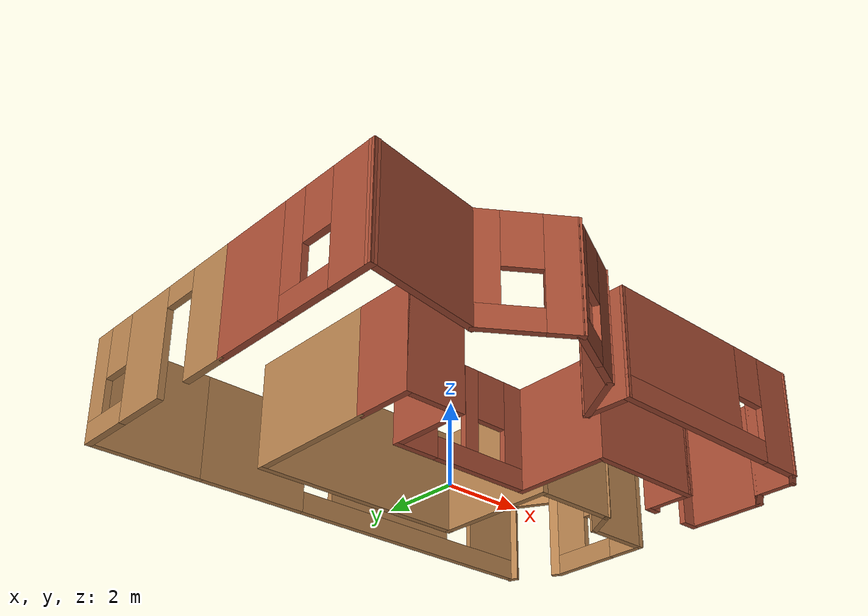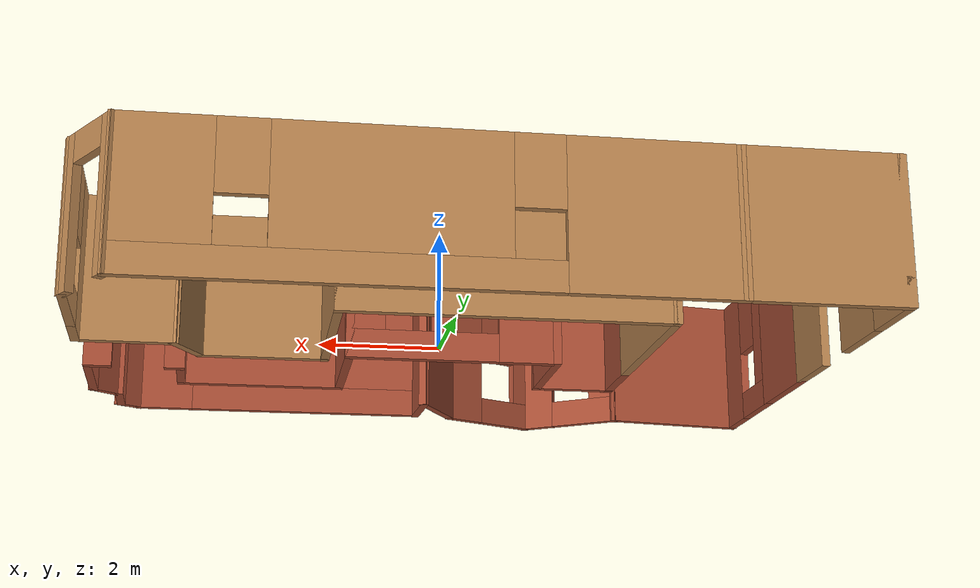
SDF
<?xml version='1.0'?>
<sdf version='1.7'>
  <model name='Casita'>
    <pose>-0.412765 -1.41431 0 0 -0 0</pose>
    <link name='Wall_0'>
      <collision name='Wall_0_Collision'>
        <geometry>
          <box>
            <size>2 0.15 2.5</size>
          </box>
        </geometry>
        <pose>0 0 1.25 0 -0 0</pose>
      </collision>
      <visual name='Wall_0_Visual'>
        <pose>0 0 1.25 0 -0 0</pose>
        <geometry>
          <box>
            <size>2 0.15 2.5</size>
          </box>
        </geometry>
        <material>
          <script>
            <uri>file://media/materials/scripts/gazebo.material</uri>
            <name>Gazebo/Bricks</name>
          </script>
          <ambient>1 1 1 1</ambient>
        </material>
        <meta>
          <layer>0</layer>
        </meta>
      </visual>
      <pose>-1.75724 -0.300687 0 0 -0 1.5708</pose>
    </link>
    <link name='Wall_1'>
      <pose>0.042765 0.624313 0 0 -0 0</pose>
      <visual name='Wall_1_Visual_0'>
        <pose>-1.3275 0 1.25 0 -0 0</pose>
        <geometry>
          <box>
            <size>1.095 0.15 2.5</size>
          </box>
        </geometry>
        <material>
          <script>
            <uri>file://media/materials/scripts/gazebo.material</uri>
            <name>Gazebo/Bricks</name>
          </script>
          <ambient>1 1 1 1</ambient>
        </material>
        <meta>
          <layer>0</layer>
        </meta>
      </visual>
      <collision name='Wall_1_Collision_0'>
        <geometry>
          <box>
            <size>1.095 0.15 2.5</size>
          </box>
        </geometry>
        <pose>-1.3275 0 1.25 0 -0 0</pose>
      </collision>
      <visual name='Wall_1_Visual_1'>
        <pose>0.5475 0 0.25 0 -0 0</pose>
        <geometry>
          <box>
            <size>2.655 0.15 0.5</size>
          </box>
        </geometry>
        <material>
          <script>
            <uri>file://media/materials/scripts/gazebo.material</uri>
            <name>Gazebo/Bricks</name>
          </script>
          <ambient>1 1 1 1</ambient>
        </material>
        <meta>
          <layer>0</layer>
        </meta>
      </visual>
      <collision name='Wall_1_Collision_1'>
        <geometry>
          <box>
            <size>2.655 0.15 0.5</size>
          </box>
        </geometry>
        <pose>0.5475 0 0.25 0 -0 0</pose>
      </collision>
      <visual name='Wall_1_Visual_2'>
        <pose>0.21 0 1.5 0 -0 0</pose>
        <geometry>
          <box>
            <size>0.38 0.15 2</size>
          </box>
        </geometry>
        <material>
          <script>
            <uri>file://media/materials/scripts/gazebo.material</uri>
            <name>Gazebo/Bricks</name>
          </script>
          <ambient>1 1 1 1</ambient>
        </material>
        <meta>
          <layer>0</layer>
        </meta>
      </visual>
      <collision name='Wall_1_Collision_2'>
        <geometry>
          <box>
            <size>0.38 0.15 2</size>
          </box>
        </geometry>
        <pose>0.21 0 1.5 0 -0 0</pose>
      </collision>
      <visual name='Wall_1_Visual_3'>
        <pose>1.5375 0 1.5 0 -0 0</pose>
        <geometry>
          <box>
            <size>0.675 0.15 2</size>
          </box>
        </geometry>
        <material>
          <script>
            <uri>file://media/materials/scripts/gazebo.material</uri>
            <name>Gazebo/Bricks</name>
          </script>
          <ambient>1 1 1 1</ambient>
        </material>
        <meta>
          <layer>0</layer>
        </meta>
      </visual>
      <collision name='Wall_1_Collision_3'>
        <geometry>
          <box>
            <size>0.675 0.15 2</size>
          </box>
        </geometry>
        <pose>1.5375 0 1.5 0 -0 0</pose>
      </collision>
      <visual name='Wall_1_Visual_4'>
        <pose>-0.38 0 1.9 0 -0 0</pose>
        <geometry>
          <box>
            <size>0.8 0.15 1.2</size>
          </box>
        </geometry>
        <material>
          <script>
            <uri>file://media/materials/scripts/gazebo.material</uri>
            <name>Gazebo/Bricks</name>
          </script>
          <ambient>1 1 1 1</ambient>
        </material>
        <meta>
          <layer>0</layer>
        </meta>
      </visual>
      <collision name='Wall_1_Collision_4'>
        <geometry>
          <box>
            <size>0.8 0.15 1.2</size>
          </box>
        </geometry>
        <pose>-0.38 0 1.9 0 -0 0</pose>
      </collision>
      <visual name='Wall_1_Visual_5'>
        <pose>0.8 0 1.9 0 -0 0</pose>
        <geometry>
          <box>
            <size>0.8 0.15 1.2</size>
          </box>
        </geometry>
        <material>
          <script>
            <uri>file://media/materials/scripts/gazebo.material</uri>
            <name>Gazebo/Bricks</name>
          </script>
          <ambient>1 1 1 1</ambient>
        </material>
        <meta>
          <layer>0</layer>
        </meta>
      </visual>
      <collision name='Wall_1_Collision_5'>
        <geometry>
          <box>
            <size>0.8 0.15 1.2</size>
          </box>
        </geometry>
        <pose>0.8 0 1.9 0 -0 0</pose>
      </collision>
    </link>
    <link name='Wall_11'>
      <collision name='Wall_11_Collision'>
        <geometry>
          <box>
            <size>0.591022 0.15 2.5</size>
          </box>
        </geometry>
        <pose>0 0 1.25 0 -0 0</pose>
      </collision>
      <visual name='Wall_11_Visual'>
        <pose>0 0 1.25 0 -0 0</pose>
        <geometry>
          <box>
            <size>0.591022 0.15 2.5</size>
          </box>
        </geometry>
        <material>
          <script>
            <uri>file://media/materials/scripts/gazebo.material</uri>
            <name>Gazebo/Bricks</name>
          </script>
          <ambient>1 1 1 1</ambient>
        </material>
        <meta>
          <layer>0</layer>
        </meta>
      </visual>
      <pose>5.69995 -3.77787 0 0 -0 -2.56617</pose>
    </link>
    <link name='Wall_12'>
      <pose>2.83995 -3.89787 0 0 -0 3.14159</pose>
      <visual name='Wall_12_Visual_0'>
        <pose>-2.21641 0 1.25 0 -0 0</pose>
        <geometry>
          <box>
            <size>1.06718 0.15 2.5</size>
          </box>
        </geometry>
        <material>
          <script>
            <uri>file://media/materials/scripts/gazebo.material</uri>
            <name>Gazebo/Bricks</name>
          </script>
          <ambient>1 1 1 1</ambient>
        </material>
        <meta>
          <layer>0</layer>
        </meta>
      </visual>
      <collision name='Wall_12_Collision_0'>
        <geometry>
          <box>
            <size>1.06718 0.15 2.5</size>
          </box>
        </geometry>
        <pose>-2.21641 0 1.25 0 -0 0</pose>
      </collision>
      <visual name='Wall_12_Visual_1'>
        <pose>0.533591 0 0.25 0 -0 0</pose>
        <geometry>
          <box>
            <size>4.43282 0.15 0.5</size>
          </box>
        </geometry>
        <material>
          <script>
            <uri>file://media/materials/scripts/gazebo.material</uri>
            <name>Gazebo/Bricks</name>
          </script>
          <ambient>1 1 1 1</ambient>
        </material>
        <meta>
          <layer>0</layer>
        </meta>
      </visual>
      <collision name='Wall_12_Collision_1'>
        <geometry>
          <box>
            <size>4.43282 0.15 0.5</size>
          </box>
        </geometry>
        <pose>0.533591 0 0.25 0 -0 0</pose>
      </collision>
      <visual name='Wall_12_Visual_2'>
        <pose>0.933591 0 1.5 0 -0 0</pose>
        <geometry>
          <box>
            <size>3.63282 0.15 2</size>
          </box>
        </geometry>
        <material>
          <script>
            <uri>file://media/materials/scripts/gazebo.material</uri>
            <name>Gazebo/Bricks</name>
          </script>
          <ambient>1 1 1 1</ambient>
        </material>
        <meta>
          <layer>0</layer>
        </meta>
      </visual>
      <collision name='Wall_12_Collision_2'>
        <geometry>
          <box>
            <size>3.63282 0.15 2</size>
          </box>
        </geometry>
        <pose>0.933591 0 1.5 0 -0 0</pose>
      </collision>
      <visual name='Wall_12_Visual_3'>
        <pose>-1.28282 0 1.9 0 -0 0</pose>
        <geometry>
          <box>
            <size>0.8 0.15 1.2</size>
          </box>
        </geometry>
        <material>
          <script>
            <uri>file://media/materials/scripts/gazebo.material</uri>
            <name>Gazebo/Bricks</name>
          </script>
          <ambient>1 1 1 1</ambient>
        </material>
        <meta>
          <layer>0</layer>
        </meta>
      </visual>
      <collision name='Wall_12_Collision_3'>
        <geometry>
          <box>
            <size>0.8 0.15 1.2</size>
          </box>
        </geometry>
        <pose>-1.28282 0 1.9 0 -0 0</pose>
      </collision>
    </link>
    <link name='Wall_13'>
      <collision name='Wall_13_Collision'>
        <geometry>
          <box>
            <size>1.15125 0.15 2.5</size>
          </box>
        </geometry>
        <pose>0 0 1.25 0 -0 0</pose>
      </collision>
      <visual name='Wall_13_Visual'>
        <pose>0 0 1.25 0 -0 0</pose>
        <geometry>
          <box>
            <size>1.15125 0.15 2.5</size>
          </box>
        </geometry>
        <material>
          <script>
            <uri>file://media/materials/scripts/gazebo.material</uri>
            <name>Gazebo/Bricks</name>
          </script>
          <ambient>1 1 1 1</ambient>
        </material>
        <meta>
          <layer>0</layer>
        </meta>
      </visual>
      <pose>0.139947 -3.39787 0 0 -0 1.62075</pose>
    </link>
    <link name='Wall_14'>
      <collision name='Wall_14_Collision'>
        <geometry>
          <box>
            <size>1.5 0.15 2.5</size>
          </box>
        </geometry>
        <pose>0 0 1.25 0 -0 0</pose>
      </collision>
      <visual name='Wall_14_Visual'>
        <pose>0 0 1.25 0 -0 0</pose>
        <geometry>
          <box>
            <size>1.5 0.15 2.5</size>
          </box>
        </geometry>
        <material>
          <script>
            <uri>file://media/materials/scripts/gazebo.material</uri>
            <name>Gazebo/Bricks</name>
          </script>
          <ambient>1 1 1 1</ambient>
        </material>
        <meta>
          <layer>0</layer>
        </meta>
      </visual>
      <pose>-0.212553 -3.45244 0 0 -0 -2.0944</pose>
    </link>
    <link name='Wall_15'>
      <pose>-1.37755 -4.44744 0 0 -0 -2.68116</pose>
      <visual name='Wall_15_Visual_0'>
        <pose>-0.599184 0 1.25 0 -0 0</pose>
        <geometry>
          <box>
            <size>0.799021 0.15 2.5</size>
          </box>
        </geometry>
        <material>
          <script>
            <uri>file://media/materials/scripts/gazebo.material</uri>
            <name>Gazebo/Bricks</name>
          </script>
          <ambient>1 1 1 1</ambient>
        </material>
        <meta>
          <layer>0</layer>
        </meta>
      </visual>
      <collision name='Wall_15_Collision_0'>
        <geometry>
          <box>
            <size>0.799021 0.15 2.5</size>
          </box>
        </geometry>
        <pose>-0.599184 0 1.25 0 -0 0</pose>
      </collision>
      <visual name='Wall_15_Visual_1'>
        <pose>0.399511 0 0.25 0 -0 0</pose>
        <geometry>
          <box>
            <size>1.19837 0.15 0.5</size>
          </box>
        </geometry>
        <material>
          <script>
            <uri>file://media/materials/scripts/gazebo.material</uri>
            <name>Gazebo/Bricks</name>
          </script>
          <ambient>1 1 1 1</ambient>
        </material>
        <meta>
          <layer>0</layer>
        </meta>
      </visual>
      <collision name='Wall_15_Collision_1'>
        <geometry>
          <box>
            <size>1.19837 0.15 0.5</size>
          </box>
        </geometry>
        <pose>0.399511 0 0.25 0 -0 0</pose>
      </collision>
      <visual name='Wall_15_Visual_2'>
        <pose>0.799511 0 1.5 0 -0 0</pose>
        <geometry>
          <box>
            <size>0.398367 0.15 2</size>
          </box>
        </geometry>
        <material>
          <script>
            <uri>file://media/materials/scripts/gazebo.material</uri>
            <name>Gazebo/Bricks</name>
          </script>
          <ambient>1 1 1 1</ambient>
        </material>
        <meta>
          <layer>0</layer>
        </meta>
      </visual>
      <collision name='Wall_15_Collision_2'>
        <geometry>
          <box>
            <size>0.398367 0.15 2</size>
          </box>
        </geometry>
        <pose>0.799511 0 1.5 0 -0 0</pose>
      </collision>
      <visual name='Wall_15_Visual_3'>
        <pose>0.200327 0 1.9 0 -0 0</pose>
        <geometry>
          <box>
            <size>0.8 0.15 1.2</size>
          </box>
        </geometry>
        <material>
          <script>
            <uri>file://media/materials/scripts/gazebo.material</uri>
            <name>Gazebo/Bricks</name>
          </script>
          <ambient>1 1 1 1</ambient>
        </material>
        <meta>
          <layer>0</layer>
        </meta>
      </visual>
      <collision name='Wall_15_Collision_3'>
        <geometry>
          <box>
            <size>0.8 0.15 1.2</size>
          </box>
        </geometry>
        <pose>0.200327 0 1.9 0 -0 0</pose>
      </collision>
    </link>
    <link name='Wall_16'>
      <pose>-3.01005 -4.33287 0 0 -0 2.54646</pose>
      <visual name='Wall_16_Visual_0'>
        <pose>-0.682527 0 1.25 0 -0 0</pose>
        <geometry>
          <box>
            <size>0.72922 0.15 2.5</size>
          </box>
        </geometry>
        <material>
          <script>
            <uri>file://media/materials/scripts/gazebo.material</uri>
            <name>Gazebo/Bricks</name>
          </script>
          <ambient>1 1 1 1</ambient>
        </material>
        <meta>
          <layer>0</layer>
        </meta>
      </visual>
      <collision name='Wall_16_Collision_0'>
        <geometry>
          <box>
            <size>0.72922 0.15 2.5</size>
          </box>
        </geometry>
        <pose>-0.682527 0 1.25 0 -0 0</pose>
      </collision>
      <visual name='Wall_16_Visual_1'>
        <pose>0.36461 0 0.25 0 -0 0</pose>
        <geometry>
          <box>
            <size>1.36505 0.15 0.5</size>
          </box>
        </geometry>
        <material>
          <script>
            <uri>file://media/materials/scripts/gazebo.material</uri>
            <name>Gazebo/Bricks</name>
          </script>
          <ambient>1 1 1 1</ambient>
        </material>
        <meta>
          <layer>0</layer>
        </meta>
      </visual>
      <collision name='Wall_16_Collision_1'>
        <geometry>
          <box>
            <size>1.36505 0.15 0.5</size>
          </box>
        </geometry>
        <pose>0.36461 0 0.25 0 -0 0</pose>
      </collision>
      <visual name='Wall_16_Visual_2'>
        <pose>0.76461 0 1.5 0 -0 0</pose>
        <geometry>
          <box>
            <size>0.565053 0.15 2</size>
          </box>
        </geometry>
        <material>
          <script>
            <uri>file://media/materials/scripts/gazebo.material</uri>
            <name>Gazebo/Bricks</name>
          </script>
          <ambient>1 1 1 1</ambient>
        </material>
        <meta>
          <layer>0</layer>
        </meta>
      </visual>
      <collision name='Wall_16_Collision_2'>
        <geometry>
          <box>
            <size>0.565053 0.15 2</size>
          </box>
        </geometry>
        <pose>0.76461 0 1.5 0 -0 0</pose>
      </collision>
      <visual name='Wall_16_Visual_3'>
        <pose>0.082084 0 1.9 0 -0 0</pose>
        <geometry>
          <box>
            <size>0.8 0.15 1.2</size>
          </box>
        </geometry>
        <material>
          <script>
            <uri>file://media/materials/scripts/gazebo.material</uri>
            <name>Gazebo/Bricks</name>
          </script>
          <ambient>1 1 1 1</ambient>
        </material>
        <meta>
          <layer>0</layer>
        </meta>
      </visual>
      <collision name='Wall_16_Collision_3'>
        <geometry>
          <box>
            <size>0.8 0.15 1.2</size>
          </box>
        </geometry>
        <pose>0.082084 0 1.9 0 -0 0</pose>
      </collision>
    </link>
    <link name='Wall_18'>
      <collision name='Wall_18_Collision'>
        <geometry>
          <box>
            <size>2.74794 0.15 2.5</size>
          </box>
        </geometry>
        <pose>0 0 1.25 0 -0 0</pose>
      </collision>
      <visual name='Wall_18_Visual'>
        <pose>0 0 1.25 0 -0 0</pose>
        <geometry>
          <box>
            <size>2.74794 0.15 2.5</size>
          </box>
        </geometry>
        <material>
          <script>
            <uri>file://media/materials/scripts/gazebo.material</uri>
            <name>Gazebo/Bricks</name>
          </script>
          <ambient>1 1 1 1</ambient>
        </material>
        <meta>
          <layer>0</layer>
        </meta>
      </visual>
      <pose>-5.10005 -3.95787 0 0 -0 -2.9948</pose>
    </link>
    <link name='Wall_19'>
      <pose>-6.38505 -2.97287 0 0 -0 1.5708</pose>
      <visual name='Wall_19_Visual_0'>
        <pose>-0.698909 0 1.25 0 -0 0</pose>
        <geometry>
          <box>
            <size>1.10218 0.15 2.5</size>
          </box>
        </geometry>
        <material>
          <script>
            <uri>file://media/materials/scripts/gazebo.material</uri>
            <name>Gazebo/Bricks</name>
          </script>
          <ambient>1 1 1 1</ambient>
        </material>
        <meta>
          <layer>0</layer>
        </meta>
      </visual>
      <collision name='Wall_19_Collision_0'>
        <geometry>
          <box>
            <size>1.10218 0.15 2.5</size>
          </box>
        </geometry>
        <pose>-0.698909 0 1.25 0 -0 0</pose>
      </collision>
      <visual name='Wall_19_Visual_1'>
        <pose>0.551091 0 0.25 0 -0 0</pose>
        <geometry>
          <box>
            <size>1.39782 0.15 0.5</size>
          </box>
        </geometry>
        <material>
          <script>
            <uri>file://media/materials/scripts/gazebo.material</uri>
            <name>Gazebo/Bricks</name>
          </script>
          <ambient>1 1 1 1</ambient>
        </material>
        <meta>
          <layer>0</layer>
        </meta>
      </visual>
      <collision name='Wall_19_Collision_1'>
        <geometry>
          <box>
            <size>1.39782 0.15 0.5</size>
          </box>
        </geometry>
        <pose>0.551091 0 0.25 0 -0 0</pose>
      </collision>
      <visual name='Wall_19_Visual_2'>
        <pose>0.951091 0 1.5 0 -0 0</pose>
        <geometry>
          <box>
            <size>0.597818 0.15 2</size>
          </box>
        </geometry>
        <material>
          <script>
            <uri>file://media/materials/scripts/gazebo.material</uri>
            <name>Gazebo/Bricks</name>
          </script>
          <ambient>1 1 1 1</ambient>
        </material>
        <meta>
          <layer>0</layer>
        </meta>
      </visual>
      <collision name='Wall_19_Collision_2'>
        <geometry>
          <box>
            <size>0.597818 0.15 2</size>
          </box>
        </geometry>
        <pose>0.951091 0 1.5 0 -0 0</pose>
      </collision>
      <visual name='Wall_19_Visual_3'>
        <pose>0.252182 0 1.9 0 -0 0</pose>
        <geometry>
          <box>
            <size>0.8 0.15 1.2</size>
          </box>
        </geometry>
        <material>
          <script>
            <uri>file://media/materials/scripts/gazebo.material</uri>
            <name>Gazebo/Bricks</name>
          </script>
          <ambient>1 1 1 1</ambient>
        </material>
        <meta>
          <layer>0</layer>
        </meta>
      </visual>
      <collision name='Wall_19_Collision_3'>
        <geometry>
          <box>
            <size>0.8 0.15 1.2</size>
          </box>
        </geometry>
        <pose>0.252182 0 1.9 0 -0 0</pose>
      </collision>
    </link>
    <link name='Wall_2'>
      <collision name='Wall_2_Collision'>
        <geometry>
          <box>
            <size>2.5 0.15 2.5</size>
          </box>
        </geometry>
        <pose>0 0 1.25 0 -0 0</pose>
      </collision>
      <visual name='Wall_2_Visual'>
        <pose>0 0 1.25 0 -0 0</pose>
        <geometry>
          <box>
            <size>2.5 0.15 2.5</size>
          </box>
        </geometry>
        <material>
          <script>
            <uri>file://media/materials/scripts/gazebo.material</uri>
            <name>Gazebo/Bricks</name>
          </script>
          <ambient>1 1 1 1</ambient>
        </material>
        <meta>
          <layer>0</layer>
        </meta>
      </visual>
      <pose>1.84276 -0.550687 0 0 -0 -1.5708</pose>
    </link>
    <link name='Wall_22'>
      <collision name='Wall_22_Collision'>
        <geometry>
          <box>
            <size>1.5 0.15 2.5</size>
          </box>
        </geometry>
        <pose>0 0 1.25 0 -0 0</pose>
      </collision>
      <visual name='Wall_22_Visual'>
        <pose>0 0 1.25 0 -0 0</pose>
        <geometry>
          <box>
            <size>1.5 0.15 2.5</size>
          </box>
        </geometry>
        <material>
          <script>
            <uri>file://media/materials/scripts/gazebo.material</uri>
            <name>Gazebo/Bricks</name>
          </script>
          <ambient>1 1 1 1</ambient>
        </material>
        <meta>
          <layer>0</layer>
        </meta>
      </visual>
      <pose>-2.43223 -1.22569 0 0 -0 3.14159</pose>
    </link>
    <link name='Wall_24'>
      <collision name='Wall_24_Collision'>
        <geometry>
          <box>
            <size>2 0.15 2.5</size>
          </box>
        </geometry>
        <pose>0 0 1.25 0 -0 0</pose>
      </collision>
      <visual name='Wall_24_Visual'>
        <pose>0 0 1.25 0 -0 0</pose>
        <geometry>
          <box>
            <size>2 0.15 2.5</size>
          </box>
        </geometry>
        <material>
          <script>
            <uri>file://media/materials/scripts/gazebo.material</uri>
            <name>Gazebo/Bricks</name>
          </script>
          <ambient>1 1 1 1</ambient>
        </material>
        <meta>
          <layer>0</layer>
        </meta>
      </visual>
      <pose>-6.38505 -0.872869 0 0 -0 1.5708</pose>
    </link>
    <link name='Wall_26'>
      <collision name='Wall_26_Collision'>
        <geometry>
          <box>
            <size>1.5 0.15 2.5</size>
          </box>
        </geometry>
        <pose>0 0 1.25 0 -0 0</pose>
      </collision>
      <visual name='Wall_26_Visual'>
        <pose>0 0 1.25 0 -0 0</pose>
        <geometry>
          <box>
            <size>1.5 0.15 2.5</size>
          </box>
        </geometry>
        <material>
          <script>
            <uri>file://media/materials/scripts/gazebo.material</uri>
            <name>Gazebo/Bricks</name>
          </script>
          <ambient>1 1 1 1</ambient>
        </material>
        <meta>
          <layer>0</layer>
        </meta>
      </visual>
      <pose>-3.10724 -0.550687 0 0 -0 1.5708</pose>
    </link>
    <link name='Wall_28'>
      <pose>-6.38505 2.47713 0 0 -0 1.5708</pose>
      <visual name='Wall_28_Visual_0'>
        <pose>-1.85441 0 1.25 0 -0 0</pose>
        <geometry>
          <box>
            <size>1.29118 0.15 2.5</size>
          </box>
        </geometry>
        <material>
          <script>
            <uri>file://media/materials/scripts/gazebo.material</uri>
            <name>Gazebo/Wood</name>
          </script>
          <ambient>1 1 1 1</ambient>
        </material>
        <meta>
          <layer>0</layer>
        </meta>
      </visual>
      <collision name='Wall_28_Collision_0'>
        <geometry>
          <box>
            <size>1.29118 0.15 2.5</size>
          </box>
        </geometry>
        <pose>-1.85441 0 1.25 0 -0 0</pose>
      </collision>
      <visual name='Wall_28_Visual_1'>
        <pose>0.404683 0 1.25 0 -0 0</pose>
        <geometry>
          <box>
            <size>1.427 0.15 2.5</size>
          </box>
        </geometry>
        <material>
          <script>
            <uri>file://media/materials/scripts/gazebo.material</uri>
            <name>Gazebo/Wood</name>
          </script>
          <ambient>1 1 1 1</ambient>
        </material>
        <meta>
          <layer>0</layer>
        </meta>
      </visual>
      <collision name='Wall_28_Collision_1'>
        <geometry>
          <box>
            <size>1.427 0.15 2.5</size>
          </box>
        </geometry>
        <pose>0.404683 0 1.25 0 -0 0</pose>
      </collision>
      <visual name='Wall_28_Visual_2'>
        <pose>1.80909 0 0.25 0 -0 0</pose>
        <geometry>
          <box>
            <size>1.38182 0.15 0.5</size>
          </box>
        </geometry>
        <material>
          <script>
            <uri>file://media/materials/scripts/gazebo.material</uri>
            <name>Gazebo/Wood</name>
          </script>
          <ambient>1 1 1 1</ambient>
        </material>
        <meta>
          <layer>0</layer>
        </meta>
      </visual>
      <collision name='Wall_28_Collision_2'>
        <geometry>
          <box>
            <size>1.38182 0.15 0.5</size>
          </box>
        </geometry>
        <pose>1.80909 0 0.25 0 -0 0</pose>
      </collision>
      <visual name='Wall_28_Visual_3'>
        <pose>2.20909 0 1.5 0 -0 0</pose>
        <geometry>
          <box>
            <size>0.581817 0.15 2</size>
          </box>
        </geometry>
        <material>
          <script>
            <uri>file://media/materials/scripts/gazebo.material</uri>
            <name>Gazebo/Wood</name>
          </script>
          <ambient>1 1 1 1</ambient>
        </material>
        <meta>
          <layer>0</layer>
        </meta>
      </visual>
      <collision name='Wall_28_Collision_3'>
        <geometry>
          <box>
            <size>0.581817 0.15 2</size>
          </box>
        </geometry>
        <pose>2.20909 0 1.5 0 -0 0</pose>
      </collision>
      <visual name='Wall_28_Visual_4'>
        <pose>1.51818 0 1.9 0 -0 0</pose>
        <geometry>
          <box>
            <size>0.8 0.15 1.2</size>
          </box>
        </geometry>
        <material>
          <script>
            <uri>file://media/materials/scripts/gazebo.material</uri>
            <name>Gazebo/Wood</name>
          </script>
          <ambient>1 1 1 1</ambient>
        </material>
        <meta>
          <layer>0</layer>
        </meta>
      </visual>
      <collision name='Wall_28_Collision_4'>
        <geometry>
          <box>
            <size>0.8 0.15 1.2</size>
          </box>
        </geometry>
        <pose>1.51818 0 1.9 0 -0 0</pose>
      </collision>
      <visual name='Wall_28_Visual_5'>
        <pose>-0.758817 0 2.25 0 -0 0</pose>
        <geometry>
          <box>
            <size>0.9 0.15 0.5</size>
          </box>
        </geometry>
        <material>
          <script>
            <uri>file://media/materials/scripts/gazebo.material</uri>
            <name>Gazebo/Wood</name>
          </script>
          <ambient>1 1 1 1</ambient>
        </material>
        <meta>
          <layer>0</layer>
        </meta>
      </visual>
      <collision name='Wall_28_Collision_5'>
        <geometry>
          <box>
            <size>0.9 0.15 0.5</size>
          </box>
        </geometry>
        <pose>-0.758817 0 2.25 0 -0 0</pose>
      </collision>
    </link>
    <link name='Wall_29'>
      <collision name='Wall_29_Collision'>
        <geometry>
          <box>
            <size>2.75 0.15 2.5</size>
          </box>
        </geometry>
        <pose>0 0 1.25 0 -0 0</pose>
      </collision>
      <visual name='Wall_29_Visual'>
        <pose>0 0 1.25 0 -0 0</pose>
        <geometry>
          <box>
            <size>2.75 0.15 2.5</size>
          </box>
        </geometry>
        <material>
          <script>
            <uri>file://media/materials/scripts/gazebo.material</uri>
            <name>Gazebo/Wood</name>
          </script>
          <ambient>1 1 1 1</ambient>
        </material>
        <meta>
          <layer>0</layer>
        </meta>
      </visual>
      <pose>-5.08505 4.90213 0 0 -0 0</pose>
    </link>
    <link name='Wall_31'>
      <collision name='Wall_31_Collision'>
        <geometry>
          <box>
            <size>3.5 0.15 2.5</size>
          </box>
        </geometry>
        <pose>0 0 1.25 0 -0 0</pose>
      </collision>
      <visual name='Wall_31_Visual'>
        <pose>0 0 1.25 0 -0 0</pose>
        <geometry>
          <box>
            <size>3.5 0.15 2.5</size>
          </box>
        </geometry>
        <material>
          <script>
            <uri>file://media/materials/scripts/gazebo.material</uri>
            <name>Gazebo/Wood</name>
          </script>
          <ambient>1 1 1 1</ambient>
        </material>
        <meta>
          <layer>0</layer>
        </meta>
      </visual>
      <pose>-3.10724 1.79931 0 0 -0 1.5708</pose>
    </link>
    <link name='Wall_32'>
      <collision name='Wall_32_Collision'>
        <geometry>
          <box>
            <size>5.5 0.15 2.5</size>
          </box>
        </geometry>
        <pose>0 0 1.25 0 -0 0</pose>
      </collision>
      <visual name='Wall_32_Visual'>
        <pose>0 0 1.25 0 -0 0</pose>
        <geometry>
          <box>
            <size>5.5 0.15 2.5</size>
          </box>
        </geometry>
        <material>
          <script>
            <uri>file://media/materials/scripts/gazebo.material</uri>
            <name>Gazebo/Wood</name>
          </script>
          <ambient>1 1 1 1</ambient>
        </material>
        <meta>
          <layer>0</layer>
        </meta>
      </visual>
      <pose>-0.432235 3.47431 0 0 -0 0</pose>
    </link>
    <link name='Wall_33'>
      <collision name='Wall_33_Collision'>
        <geometry>
          <box>
            <size>3.25 0.15 2.5</size>
          </box>
        </geometry>
        <pose>0 0 1.25 0 -0 0</pose>
      </collision>
      <visual name='Wall_33_Visual'>
        <pose>0 0 1.25 0 -0 0</pose>
        <geometry>
          <box>
            <size>3.25 0.15 2.5</size>
          </box>
        </geometry>
        <material>
          <script>
            <uri>file://media/materials/scripts/gazebo.material</uri>
            <name>Gazebo/Wood</name>
          </script>
          <ambient>1 1 1 1</ambient>
        </material>
        <meta>
          <layer>0</layer>
        </meta>
      </visual>
      <pose>2.24276 1.92431 0 0 -0 -1.5708</pose>
    </link>
    <link name='Wall_34'>
      <collision name='Wall_34_Collision'>
        <geometry>
          <box>
            <size>2.25 0.15 2.5</size>
          </box>
        </geometry>
        <pose>0 0 1.25 0 -0 0</pose>
      </collision>
      <visual name='Wall_34_Visual'>
        <pose>0 0 1.25 0 -0 0</pose>
        <geometry>
          <box>
            <size>2.25 0.15 2.5</size>
          </box>
        </geometry>
        <material>
          <script>
            <uri>file://media/materials/scripts/gazebo.material</uri>
            <name>Gazebo/Wood</name>
          </script>
          <ambient>1 1 1 1</ambient>
        </material>
        <meta>
          <layer>0</layer>
        </meta>
      </visual>
      <pose>3.29277 0.374313 0 0 -0 0</pose>
    </link>
    <link name='Wall_35'>
      <collision name='Wall_35_Collision'>
        <geometry>
          <box>
            <size>1 0.15 2.5</size>
          </box>
        </geometry>
        <pose>0 0 1.25 0 -0 0</pose>
      </collision>
      <visual name='Wall_35_Visual'>
        <pose>0 0 1.25 0 -0 0</pose>
        <geometry>
          <box>
            <size>1 0.15 2.5</size>
          </box>
        </geometry>
        <material>
          <script>
            <uri>file://media/materials/scripts/gazebo.material</uri>
            <name>Gazebo/Wood</name>
          </script>
          <ambient>1 1 1 1</ambient>
        </material>
        <meta>
          <layer>0</layer>
        </meta>
      </visual>
      <pose>4.55526 0.742374 0 0 -0 1.0472</pose>
    </link>
    <link name='Wall_36'>
      <collision name='Wall_36_Collision'>
        <geometry>
          <box>
            <size>1.75 0.15 2.5</size>
          </box>
        </geometry>
        <pose>0 0 1.25 0 -0 0</pose>
      </collision>
      <visual name='Wall_36_Visual'>
        <pose>0 0 1.25 0 -0 0</pose>
        <geometry>
          <box>
            <size>1.75 0.15 2.5</size>
          </box>
        </geometry>
        <material>
          <script>
            <uri>file://media/materials/scripts/gazebo.material</uri>
            <name>Gazebo/Wood</name>
          </script>
          <ambient>1 1 1 1</ambient>
        </material>
        <meta>
          <layer>0</layer>
        </meta>
      </visual>
      <pose>5.56776 1.11044 0 0 -0 0</pose>
    </link>
    <link name='Wall_37'>
      <pose>6.36776 2.41044 0 0 -0 1.5708</pose>
      <visual name='Wall_37_Visual_0'>
        <pose>-0.900061 0 1.25 0 -0 0</pose>
        <geometry>
          <box>
            <size>0.949878 0.15 2.5</size>
          </box>
        </geometry>
        <material>
          <script>
            <uri>file://media/materials/scripts/gazebo.material</uri>
            <name>Gazebo/Wood</name>
          </script>
          <ambient>1 1 1 1</ambient>
        </material>
        <meta>
          <layer>0</layer>
        </meta>
      </visual>
      <collision name='Wall_37_Collision_0'>
        <geometry>
          <box>
            <size>0.949878 0.15 2.5</size>
          </box>
        </geometry>
        <pose>-0.900061 0 1.25 0 -0 0</pose>
      </collision>
      <visual name='Wall_37_Visual_1'>
        <pose>0.474939 0 0.25 0 -0 0</pose>
        <geometry>
          <box>
            <size>1.80012 0.15 0.5</size>
          </box>
        </geometry>
        <material>
          <script>
            <uri>file://media/materials/scripts/gazebo.material</uri>
            <name>Gazebo/Wood</name>
          </script>
          <ambient>1 1 1 1</ambient>
        </material>
        <meta>
          <layer>0</layer>
        </meta>
      </visual>
      <collision name='Wall_37_Collision_1'>
        <geometry>
          <box>
            <size>1.80012 0.15 0.5</size>
          </box>
        </geometry>
        <pose>0.474939 0 0.25 0 -0 0</pose>
      </collision>
      <visual name='Wall_37_Visual_2'>
        <pose>0.874939 0 1.5 0 -0 0</pose>
        <geometry>
          <box>
            <size>1.00012 0.15 2</size>
          </box>
        </geometry>
        <material>
          <script>
            <uri>file://media/materials/scripts/gazebo.material</uri>
            <name>Gazebo/Wood</name>
          </script>
          <ambient>1 1 1 1</ambient>
        </material>
        <meta>
          <layer>0</layer>
        </meta>
      </visual>
      <collision name='Wall_37_Collision_2'>
        <geometry>
          <box>
            <size>1.00012 0.15 2</size>
          </box>
        </geometry>
        <pose>0.874939 0 1.5 0 -0 0</pose>
      </collision>
      <visual name='Wall_37_Visual_3'>
        <pose>-0.025122 0 1.9 0 -0 0</pose>
        <geometry>
          <box>
            <size>0.8 0.15 1.2</size>
          </box>
        </geometry>
        <material>
          <script>
            <uri>file://media/materials/scripts/gazebo.material</uri>
            <name>Gazebo/Wood</name>
          </script>
          <ambient>1 1 1 1</ambient>
        </material>
        <meta>
          <layer>0</layer>
        </meta>
      </visual>
      <collision name='Wall_37_Collision_3'>
        <geometry>
          <box>
            <size>0.8 0.15 1.2</size>
          </box>
        </geometry>
        <pose>-0.025122 0 1.9 0 -0 0</pose>
      </collision>
    </link>
    <link name='Wall_38'>
      <pose>6.03026 4.295 0 0 -0 2.0944</pose>
      <visual name='Wall_38_Visual_0'>
        <pose>-0.589214 0 1.25 0 -0 0</pose>
        <geometry>
          <box>
            <size>0.321572 0.15 2.5</size>
          </box>
        </geometry>
        <material>
          <script>
            <uri>file://media/materials/scripts/gazebo.material</uri>
            <name>Gazebo/Wood</name>
          </script>
          <ambient>1 1 1 1</ambient>
        </material>
        <meta>
          <layer>0</layer>
        </meta>
      </visual>
      <collision name='Wall_38_Collision_0'>
        <geometry>
          <box>
            <size>0.321572 0.15 2.5</size>
          </box>
        </geometry>
        <pose>-0.589214 0 1.25 0 -0 0</pose>
      </collision>
      <visual name='Wall_38_Visual_1'>
        <pose>0.610786 0 1.25 0 -0 0</pose>
        <geometry>
          <box>
            <size>0.278428 0.15 2.5</size>
          </box>
        </geometry>
        <material>
          <script>
            <uri>file://media/materials/scripts/gazebo.material</uri>
            <name>Gazebo/Wood</name>
          </script>
          <ambient>1 1 1 1</ambient>
        </material>
        <meta>
          <layer>0</layer>
        </meta>
      </visual>
      <collision name='Wall_38_Collision_1'>
        <geometry>
          <box>
            <size>0.278428 0.15 2.5</size>
          </box>
        </geometry>
        <pose>0.610786 0 1.25 0 -0 0</pose>
      </collision>
      <visual name='Wall_38_Visual_2'>
        <pose>0.021572 0 2.25 0 -0 0</pose>
        <geometry>
          <box>
            <size>0.9 0.15 0.5</size>
          </box>
        </geometry>
        <material>
          <script>
            <uri>file://media/materials/scripts/gazebo.material</uri>
            <name>Gazebo/Wood</name>
          </script>
          <ambient>1 1 1 1</ambient>
        </material>
        <meta>
          <layer>0</layer>
        </meta>
      </visual>
      <collision name='Wall_38_Collision_2'>
        <geometry>
          <box>
            <size>0.9 0.15 0.5</size>
          </box>
        </geometry>
        <pose>0.021572 0 2.25 0 -0 0</pose>
      </collision>
    </link>
    <link name='Wall_4'>
      <collision name='Wall_4_Collision'>
        <geometry>
          <box>
            <size>3 0.15 2.5</size>
          </box>
        </geometry>
        <pose>0 0 1.25 0 -0 0</pose>
      </collision>
      <visual name='Wall_4_Visual'>
        <pose>0 0 1.25 0 -0 0</pose>
        <geometry>
          <box>
            <size>3 0.15 2.5</size>
          </box>
        </geometry>
        <material>
          <script>
            <uri>file://media/materials/scripts/gazebo.material</uri>
            <name>Gazebo/Bricks</name>
          </script>
          <ambient>1 1 1 1</ambient>
        </material>
        <meta>
          <layer>0</layer>
        </meta>
      </visual>
      <pose>3.26776 -1.72569 0 0 -0 0</pose>
    </link>
    <link name='Wall_40'>
      <pose>0.953856 4.89085 0 0 -0 -0.00238</pose>
      <visual name='Wall_40_Visual_0'>
        <pose>-3.40603 0 1.25 0 -0 0</pose>
        <geometry>
          <box>
            <size>2.81578 0.15 2.5</size>
          </box>
        </geometry>
        <material>
          <script>
            <uri>file://media/materials/scripts/gazebo.material</uri>
            <name>Gazebo/Wood</name>
          </script>
          <ambient>1 1 1 1</ambient>
        </material>
        <meta>
          <layer>0</layer>
        </meta>
      </visual>
      <collision name='Wall_40_Collision_0'>
        <geometry>
          <box>
            <size>2.81578 0.15 2.5</size>
          </box>
        </geometry>
        <pose>-3.40603 0 1.25 0 -0 0</pose>
      </collision>
      <visual name='Wall_40_Visual_1'>
        <pose>1.40789 0 0.25 0 -0 0</pose>
        <geometry>
          <box>
            <size>6.81207 0.15 0.5</size>
          </box>
        </geometry>
        <material>
          <script>
            <uri>file://media/materials/scripts/gazebo.material</uri>
            <name>Gazebo/Wood</name>
          </script>
          <ambient>1 1 1 1</ambient>
        </material>
        <meta>
          <layer>0</layer>
        </meta>
      </visual>
      <collision name='Wall_40_Collision_1'>
        <geometry>
          <box>
            <size>6.81207 0.15 0.5</size>
          </box>
        </geometry>
        <pose>1.40789 0 0.25 0 -0 0</pose>
      </collision>
      <visual name='Wall_40_Visual_2'>
        <pose>0.621294 0 1.5 0 -0 0</pose>
        <geometry>
          <box>
            <size>3.63888 0.15 2</size>
          </box>
        </geometry>
        <material>
          <script>
            <uri>file://media/materials/scripts/gazebo.material</uri>
            <name>Gazebo/Wood</name>
          </script>
          <ambient>1 1 1 1</ambient>
        </material>
        <meta>
          <layer>0</layer>
        </meta>
      </visual>
      <collision name='Wall_40_Collision_2'>
        <geometry>
          <box>
            <size>3.63888 0.15 2</size>
          </box>
        </geometry>
        <pose>0.621294 0 1.5 0 -0 0</pose>
      </collision>
      <visual name='Wall_40_Visual_3'>
        <pose>4.02733 0 1.5 0 -0 0</pose>
        <geometry>
          <box>
            <size>1.57319 0.15 2</size>
          </box>
        </geometry>
        <material>
          <script>
            <uri>file://media/materials/scripts/gazebo.material</uri>
            <name>Gazebo/Wood</name>
          </script>
          <ambient>1 1 1 1</ambient>
        </material>
        <meta>
          <layer>0</layer>
        </meta>
      </visual>
      <collision name='Wall_40_Collision_3'>
        <geometry>
          <box>
            <size>1.57319 0.15 2</size>
          </box>
        </geometry>
        <pose>4.02733 0 1.5 0 -0 0</pose>
      </collision>
      <visual name='Wall_40_Visual_4'>
        <pose>-1.59814 0 1.9 0 -0 0</pose>
        <geometry>
          <box>
            <size>0.8 0.15 1.2</size>
          </box>
        </geometry>
        <material>
          <script>
            <uri>file://media/materials/scripts/gazebo.material</uri>
            <name>Gazebo/Wood</name>
          </script>
          <ambient>1 1 1 1</ambient>
        </material>
        <meta>
          <layer>0</layer>
        </meta>
      </visual>
      <collision name='Wall_40_Collision_4'>
        <geometry>
          <box>
            <size>0.8 0.15 1.2</size>
          </box>
        </geometry>
        <pose>-1.59814 0 1.9 0 -0 0</pose>
      </collision>
      <visual name='Wall_40_Visual_5'>
        <pose>2.84073 0 1.9 0 -0 0</pose>
        <geometry>
          <box>
            <size>0.8 0.15 1.2</size>
          </box>
        </geometry>
        <material>
          <script>
            <uri>file://media/materials/scripts/gazebo.material</uri>
            <name>Gazebo/Wood</name>
          </script>
          <ambient>1 1 1 1</ambient>
        </material>
        <meta>
          <layer>0</layer>
        </meta>
      </visual>
      <collision name='Wall_40_Collision_5'>
        <geometry>
          <box>
            <size>0.8 0.15 1.2</size>
          </box>
        </geometry>
        <pose>2.84073 0 1.9 0 -0 0</pose>
      </collision>
    </link>
    <link name='Wall_5'>
      <collision name='Wall_5_Collision'>
        <geometry>
          <box>
            <size>1.25 0.15 2.5</size>
          </box>
        </geometry>
        <pose>0 0 1.25 0 -0 0</pose>
      </collision>
      <visual name='Wall_5_Visual'>
        <pose>0 0 1.25 0 -0 0</pose>
        <geometry>
          <box>
            <size>1.25 0.15 2.5</size>
          </box>
        </geometry>
        <material>
          <script>
            <uri>file://media/materials/scripts/gazebo.material</uri>
            <name>Gazebo/Bricks</name>
          </script>
          <ambient>1 1 1 1</ambient>
        </material>
        <meta>
          <layer>0</layer>
        </meta>
      </visual>
      <pose>4.69276 -1.17569 0 0 -0 1.5708</pose>
    </link>
    <link name='Wall_6'>
      <pose>5.49276 -0.625687 0 0 -0 0</pose>
      <visual name='Wall_6_Visual_0'>
        <pose>-0.695 0 1.25 0 -0 0</pose>
        <geometry>
          <box>
            <size>0.36 0.15 2.5</size>
          </box>
        </geometry>
        <material>
          <script>
            <uri>file://media/materials/scripts/gazebo.material</uri>
            <name>Gazebo/Bricks</name>
          </script>
          <ambient>1 1 1 1</ambient>
        </material>
        <meta>
          <layer>0</layer>
        </meta>
      </visual>
      <collision name='Wall_6_Collision_0'>
        <geometry>
          <box>
            <size>0.36 0.15 2.5</size>
          </box>
        </geometry>
        <pose>-0.695 0 1.25 0 -0 0</pose>
      </collision>
      <visual name='Wall_6_Visual_1'>
        <pose>0.63 0 1.25 0 -0 0</pose>
        <geometry>
          <box>
            <size>0.49 0.15 2.5</size>
          </box>
        </geometry>
        <material>
          <script>
            <uri>file://media/materials/scripts/gazebo.material</uri>
            <name>Gazebo/Bricks</name>
          </script>
          <ambient>1 1 1 1</ambient>
        </material>
        <meta>
          <layer>0</layer>
        </meta>
      </visual>
      <collision name='Wall_6_Collision_1'>
        <geometry>
          <box>
            <size>0.49 0.15 2.5</size>
          </box>
        </geometry>
        <pose>0.63 0 1.25 0 -0 0</pose>
      </collision>
      <visual name='Wall_6_Visual_2'>
        <pose>-0.065 0 2.25 0 -0 0</pose>
        <geometry>
          <box>
            <size>0.9 0.15 0.5</size>
          </box>
        </geometry>
        <material>
          <script>
            <uri>file://media/materials/scripts/gazebo.material</uri>
            <name>Gazebo/Bricks</name>
          </script>
          <ambient>1 1 1 1</ambient>
        </material>
        <meta>
          <layer>0</layer>
        </meta>
      </visual>
      <collision name='Wall_6_Collision_2'>
        <geometry>
          <box>
            <size>0.9 0.15 0.5</size>
          </box>
        </geometry>
        <pose>-0.065 0 2.25 0 -0 0</pose>
      </collision>
    </link>
    <link name='Wall_7'>
      <collision name='Wall_7_Collision'>
        <geometry>
          <box>
            <size>2 0.15 2.5</size>
          </box>
        </geometry>
        <pose>0 0 1.25 0 -0 0</pose>
      </collision>
      <visual name='Wall_7_Visual'>
        <pose>0 0 1.25 0 -0 0</pose>
        <geometry>
          <box>
            <size>2 0.15 2.5</size>
          </box>
        </geometry>
        <material>
          <script>
            <uri>file://media/materials/scripts/gazebo.material</uri>
            <name>Gazebo/Bricks</name>
          </script>
          <ambient>1 1 1 1</ambient>
        </material>
        <meta>
          <layer>0</layer>
        </meta>
      </visual>
      <pose>6.29277 -1.55069 0 0 -0 -1.5708</pose>
    </link>
    <link name='Wall_8'>
      <collision name='Wall_8_Collision'>
        <geometry>
          <box>
            <size>0.675985 0.15 2.5</size>
          </box>
        </geometry>
        <pose>0 0 1.25 0 -0 0</pose>
      </collision>
      <visual name='Wall_8_Visual'>
        <pose>0 0 1.25 0 -0 0</pose>
        <geometry>
          <box>
            <size>0.675985 0.15 2.5</size>
          </box>
        </geometry>
        <material>
          <script>
            <uri>file://media/materials/scripts/gazebo.material</uri>
            <name>Gazebo/Bricks</name>
          </script>
          <ambient>1 1 1 1</ambient>
        </material>
        <meta>
          <layer>0</layer>
        </meta>
      </visual>
      <pose>6.08886 -2.64178 0 0 -0 -2.45805</pose>
    </link>
    <link name='Wall_9'>
      <collision name='Wall_9_Collision'>
        <geometry>
          <box>
            <size>1 0.15 2.5</size>
          </box>
        </geometry>
        <pose>0 0 1.25 0 -0 0</pose>
      </collision>
      <visual name='Wall_9_Visual'>
        <pose>0 0 1.25 0 -0 0</pose>
        <geometry>
          <box>
            <size>1 0.15 2.5</size>
          </box>
        </geometry>
        <material>
          <script>
            <uri>file://media/materials/scripts/gazebo.material</uri>
            <name>Gazebo/Bricks</name>
          </script>
          <ambient>1 1 1 1</ambient>
        </material>
        <meta>
          <layer>0</layer>
        </meta>
      </visual>
      <pose>5.85495 -3.22287 0 0 -0 -1.5708</pose>
    </link>
    <static>1</static>
  </model>
</sdf>
